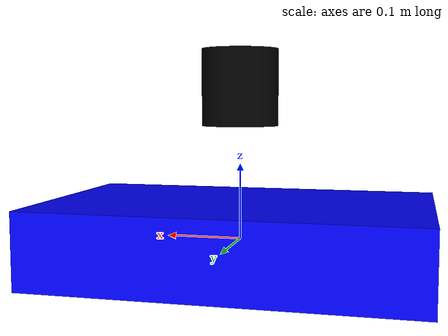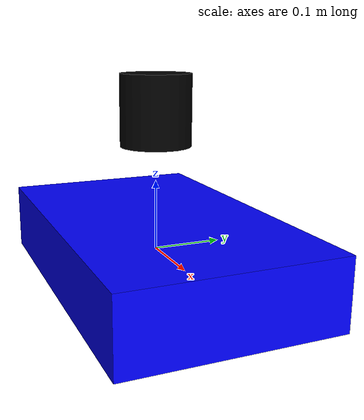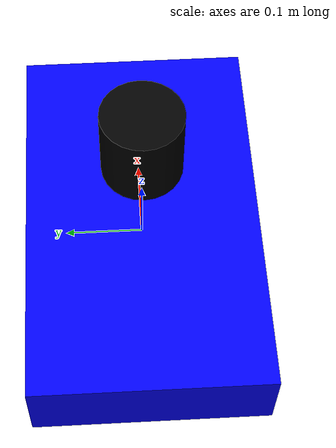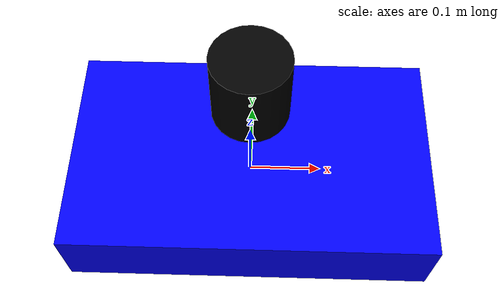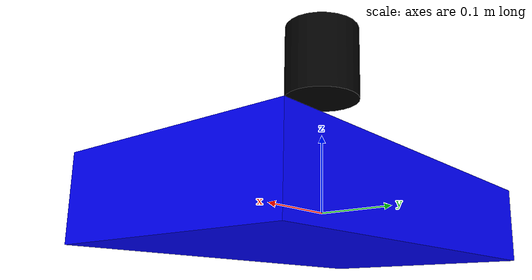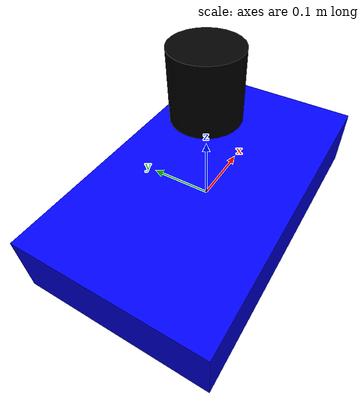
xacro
<?xml version="1.0"?>
<robot xmlns:xacro="http://www.ros.org/wiki/xacro" name="robot">

  <!-- Base link -->
  <link name="base_link">
    <visual>
      <geometry>
        <box size="0.5 0.3 0.1"/>
      </geometry>
      <material name="blue">
        <color rgba="0 0 1 1"/>
      </material>
    </visual>
  </link>

  <!-- LiDAR link -->
  <link name="velodyne">
    <visual>
      <geometry>
        <cylinder radius="0.05" length="0.1"/>
      </geometry>
      <material name="black">
        <color rgba="0 0 0 1"/>
      </material>
    </visual>
  </link>

  <!-- Joint connecting base to LiDAR -->
  <joint name="velodyne_joint" type="fixed">
    <parent link="base_link"/>
    <child link="velodyne"/>
    <origin xyz="0 0 0.2" rpy="0 0 0"/>
  </joint>

</robot>
